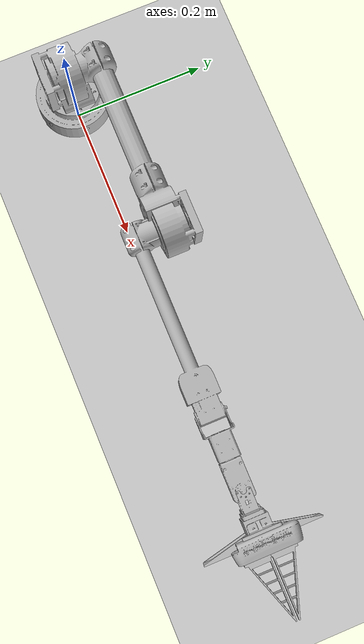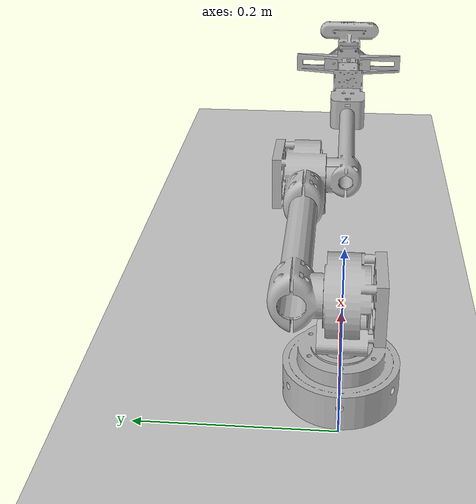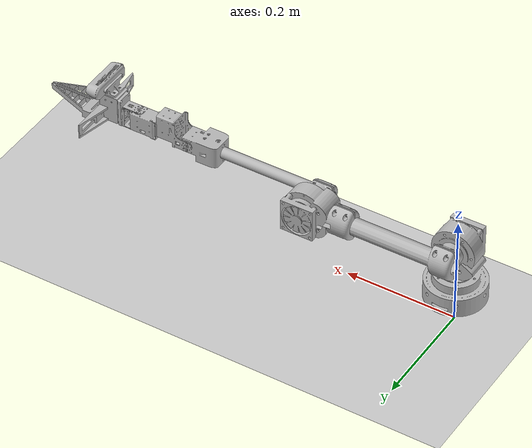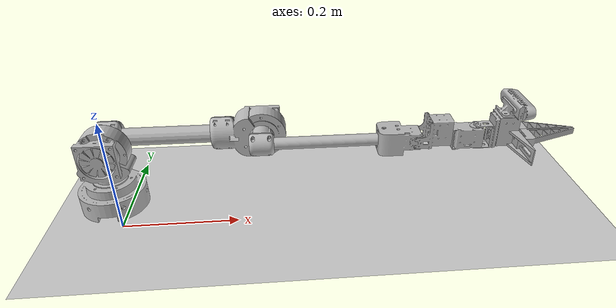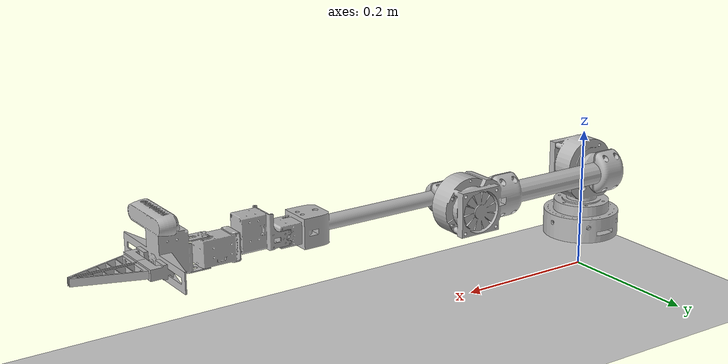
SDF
<?xml version="1.0"?>
<sdf version="1.6">
  <world name="st_arm_gazebo">
    <physics name="default_physics" default="0" type="ode">
      <max_step_size>0.001</max_step_size> <!-- 가지보 주기 -->
      <real_time_factor>1</real_time_factor>
      <real_time_update_rate>1000</real_time_update_rate>
      <ode>
	<solver>
	  <type>quick</type>
	  <iters>100</iters>
	  <sor>1.0</sor>
	  <use_dynamic_moi_rescaling>false</use_dynamic_moi_rescaling>
	</solver>
      </ode>
    </physics>

    <include>
      <uri>model://ground_plane</uri>
    </include>

    <include>
      <uri>model://sun</uri>
    </include>

    <include>
      <uri>model://st_arm_description</uri>
	    <pose frame="">0 0 0.05 0 0 0</pose> <!-- 0.5=공중 -->
      <plugin name="plugin" filename="libst_arm_plugin.so"/>
    </include>
  </world>
</sdf>

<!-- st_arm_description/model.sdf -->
<sdf version='1.7'>
  <model name='st_arm'>

    <joint name='world_joint' type='fixed'>
      <child>base_link</child>
      <parent>world</parent>
      <axis>
        <xyz>0 0 0</xyz>
        <limit>
          <lower>-1e+16</lower>
          <upper>1e+16</upper>
        </limit>
        <dynamics>
          <spring_reference>0</spring_reference>
          <spring_stiffness>0</spring_stiffness>
        </dynamics>
        <use_parent_model_frame>1</use_parent_model_frame>
      </axis>
    </joint>
    <link name='base_link'>
      <visual name='base_link_visual'>
        <pose>0 0 0 0 -0 0</pose>
        <geometry>
          <mesh>
            <scale>1 1 1</scale>
            <uri>model://st_arm_description/meshes/stl/base_link.STL</uri>
          </mesh>
        </geometry>
      </visual>
    </link>
    <joint name='shoulder_yaw_joint' type='revolute'>
      <pose relative_to='base_link'>0 0 0 0 -0 0</pose>
      <parent>base_link</parent>
      <child>shoulder_yaw_link</child>
      <axis>
        <xyz>0 0 1</xyz>
        <limit>
          <lower>-3.14</lower>
          <upper>3.14</upper>
          <effort>1</effort>
          <velocity>1</velocity>
        </limit>
        <dynamics>
          <damping>0.1</damping>
          <friction>0.1</friction>
          <spring_reference>0</spring_reference>
          <spring_stiffness>0</spring_stiffness>
        </dynamics>
      </axis>
    </joint>
    <link name='shoulder_yaw_link'>
      <pose relative_to='shoulder_yaw_joint'>0 0 0 0 -0 0</pose>
      <inertial>
        <pose>-0.000383 -0.007781 0.091573 0 -0 0</pose>
        <mass>0.11951</mass>
        <inertia>
          <ixx>4.8912e-05</ixx>
          <ixy>5.139e-07</ixy>
          <ixz>7.7875e-07</ixz>
          <iyy>8.0458e-05</iyy>
          <iyz>3.5883e-08</iyz>
          <izz>6.5405e-05</izz>
        </inertia>
      </inertial>
      <visual name='shoulder_yaw_link_visual'>
        <pose>0 0 0 0 -0 0</pose>
        <geometry>
          <mesh>
            <scale>1 1 1</scale>
            <uri>model://st_arm_description/meshes/stl/shoulder_yaw_link.STL</uri>
          </mesh>
        </geometry>
      </visual>
    </link>
    <joint name='shoulder_pitch_joint' type='revolute'>
      <pose relative_to='shoulder_yaw_link'>0 0 0.1024 0 -0 0</pose>
      <parent>shoulder_yaw_link</parent>
      <child>shoulder_pitch_link</child>
      <axis>
        <xyz>0 1 0</xyz>
        <limit>
          <lower>-3.14</lower>
          <upper>0.1</upper>
          <effort>1</effort>
          <velocity>1</velocity>
        </limit>
        <dynamics>
          <damping>0.1</damping>
          <friction>0.1</friction>
          <spring_reference>0</spring_reference>
          <spring_stiffness>0</spring_stiffness>
        </dynamics>
      </axis>
    </joint>
    <link name='shoulder_pitch_link'>
      <pose relative_to='shoulder_pitch_joint'>0 0 0 0 -0 0</pose>
      <inertial>
        <pose>0.15644 0.048066 1e-05 0 -0 0</pose>
        <mass>0.24697</mass>
        <inertia>
          <ixx>9.437e-05</ixx>
          <ixy>3.5353e-07</ixy>
          <ixz>-1.4925e-08</ixz>
          <iyy>0.00039967</iyy>
          <iyz>-3.7482e-09</iyz>
          <izz>0.0003625</izz>
        </inertia>
      </inertial>
      <visual name='shoulder_pitch_link_visual'>
        <pose>0 0 0 0 -0 0</pose>
        <geometry>
          <mesh>
            <scale>1 1 1</scale>
            <uri>model://st_arm_description/meshes/stl/shoulder_pitch_link.STL</uri>
          </mesh>
        </geometry>
      </visual>
    </link>
    <joint name='elbow_pitch_joint' type='revolute'>
      <pose relative_to='shoulder_pitch_link'>0.25 0 0 0 -0 0</pose>
      <parent>shoulder_pitch_link</parent>
      <child>elbow_pitch_link</child>
      <axis>
        <xyz>0 1 0</xyz>
        <limit>
          <lower>-0.1</lower>
          <upper>2.8</upper>
          <effort>1</effort>
          <velocity>1</velocity>
        </limit>
        <dynamics>
          <damping>0.1</damping>
          <friction>0.1</friction>
          <spring_reference>0</spring_reference>
          <spring_stiffness>0</spring_stiffness>
        </dynamics>
      </axis>
    </joint>
    <link name='elbow_pitch_link'>
      <pose relative_to='elbow_pitch_joint'>0 0 0 0 -0 0</pose>
      <inertial>
        <pose>0.14489 0.001397 2.9e-05 0 -0 0</pose>
        <mass>0.15458</mass>
        <inertia>
          <ixx>2.7811e-05</ixx>
          <ixy>-7.6006e-08</ixy>
          <ixz>-2.7358e-10</ixz>
          <iyy>0.00024853</iyy>
          <iyz>-1.2741e-10</iyz>
          <izz>0.00024924</izz>
        </inertia>
      </inertial>
      <visual name='elbow_pitch_link_visual'>
        <pose>0 0 0 0 -0 0</pose>
        <geometry>
          <mesh>
            <scale>1 1 1</scale>
            <uri>model://st_arm_description/meshes/stl/elbow_pitch_link.STL</uri>
          </mesh>
        </geometry>
      </visual>
    </link>
    <joint name='wrist_pitch_joint' type='revolute'>
      <pose relative_to='elbow_pitch_link'>0.25 0 0 0 -0 0</pose>
      <parent>elbow_pitch_link</parent>
      <child>wrist_pitch_link</child>
      <axis>
        <xyz>0 1 0</xyz>
        <limit>
          <lower>-2.8</lower>
          <upper>3.5</upper>
          <effort>1</effort>
          <velocity>1</velocity>
        </limit>
        <dynamics>
          <damping>0.1</damping>
          <friction>0.1</friction>
          <spring_reference>0</spring_reference>
          <spring_stiffness>0</spring_stiffness>
        </dynamics>
      </axis>
    </joint>
    <link name='wrist_pitch_link'>
      <pose relative_to='wrist_pitch_joint'>0 0 0 0 -0 0</pose>
      <inertial>
        <pose>0.045384 0 0.011625 0 -0 0</pose>
        <mass>0.04488</mass>
        <inertia>
          <ixx>1.056e-05</ixx>
          <ixy>9.3256e-17</ixy>
          <ixz>-1.6017e-09</ixz>
          <iyy>1.2042e-05</iyy>
          <iyz>5.2438e-15</iyz>
          <izz>7.0619e-06</izz>
        </inertia>
      </inertial>
      <visual name='wrist_pitch_link_visual'>
        <pose>0 0 0 0 -0 0</pose>
        <geometry>
          <mesh>
            <scale>1 1 1</scale>
            <uri>model://st_arm_description/meshes/stl/wrist_pitch_link.STL</uri>
          </mesh>
        </geometry>
      </visual>
    </link>
    <joint name='wrist_roll_joint' type='revolute'>
      <pose relative_to='wrist_pitch_link'>0 0 0 0 -0 0</pose>
      <parent>wrist_pitch_link</parent>
      <child>wrist_roll_link</child>
      <axis>
        <xyz>1 0 0</xyz>
        <limit>
          <lower>-3.14</lower>
          <upper>3.14</upper>
          <effort>1</effort>
          <velocity>1</velocity>
        </limit>
        <dynamics>
          <damping>0.1</damping>
          <friction>0.1</friction>
          <spring_reference>0</spring_reference>
          <spring_stiffness>0</spring_stiffness>
        </dynamics>
      </axis>
    </joint>
    <link name='wrist_roll_link'>
      <pose relative_to='wrist_roll_joint'>0 0 0 0 -0 0</pose>
      <inertial>
        <pose>0.092875 0 0.000384 0 -0 0</pose>
        <mass>0.04488</mass>
        <inertia>
          <ixx>7.0619e-06</ixx>
          <ixy>-5.2437e-15</ixy>
          <ixz>1.6017e-09</ixz>
          <iyy>1.2042e-05</iyy>
          <iyz>9.3284e-17</iyz>
          <izz>1.056e-05</izz>
        </inertia>
      </inertial>
      <visual name='wrist_roll_link_visual'>
        <pose>0 0 0 0 -0 0</pose>
        <geometry>
          <mesh>
            <scale>1 1 1</scale>
            <uri>model://st_arm_description/meshes/stl/wrist_roll_link.STL</uri>
          </mesh>
        </geometry>
      </visual>
    </link>
    <joint name='wrist_yaw_joint' type='revolute'>
      <pose relative_to='wrist_roll_link'>0.1045 0 0 0 -0 0</pose>
      <parent>wrist_roll_link</parent>
      <child>wrist_yaw_link</child>
      <axis>
        <xyz>0 0 1</xyz>
        <limit>
          <lower>-2</lower>
          <upper>2</upper>
          <effort>1</effort>
          <velocity>1</velocity>
        </limit>
        <dynamics>
          <damping>0.1</damping>
          <friction>0.1</friction>
          <spring_reference>0</spring_reference>
          <spring_stiffness>0</spring_stiffness>
        </dynamics>
      </axis>
    </joint>
    <link name='wrist_yaw_link'>
      <pose relative_to='wrist_yaw_joint'>0 0 0 0 -0 0</pose>
      <inertial>
        <pose>0.056543 0.00077 0.031224 0 -0 0</pose>
        <mass>0.0830727</mass>
        <inertia>
          <ixx>3.41437e-05</ixx>
          <ixy>4.57205e-08</ixy>
          <ixz>-1.45879e-08</ixz>
          <iyy>1.41539e-05</iyy>
          <iyz>-7.66183e-09</iyz>
          <izz>2.93287e-05</izz>
        </inertia>
      </inertial>
      <visual name='wrist_yaw_link_visual'>
        <pose>0 0 0 0 -0 0</pose>
        <geometry>
          <mesh>
            <scale>1 1 1</scale>
            <uri>model://st_arm_description/meshes/stl/wrist_yaw_link.STL</uri>
          </mesh>
        </geometry>
      </visual>
    </link>
    <joint name='gripper_left_joint' type='prismatic'>
      <pose relative_to='wrist_yaw_link'>0.083595 0.00168 0 0 -0 0</pose>
      <parent>wrist_yaw_link</parent>
      <child>gripper_left_link</child>
      <axis>
        <xyz>0 -1 0</xyz>
        <limit>
          <lower>-0.05</lower>
          <upper>0</upper>
          <effort>1</effort>
          <velocity>1</velocity>
        </limit>
        <dynamics>
          <damping>0.1</damping>
          <friction>0.1</friction>
          <spring_reference>0</spring_reference>
          <spring_stiffness>0</spring_stiffness>
        </dynamics>
      </axis>
    </joint>
    <link name='gripper_left_link'>
      <pose relative_to='gripper_left_joint'>0 0 0 0 -0 0</pose>
      <inertial>
        <pose>0.011191 0.017208 -0 0 -0 0</pose>
        <mass>0.0151655</mass>
        <inertia>
          <ixx>1.52745e-06</ixx>
          <ixy>1.20106e-06</ixy>
          <ixz>3.87211e-18</ixz>
          <iyy>7.43136e-06</iyy>
          <iyz>-6.58552e-19</iyz>
          <izz>8.50839e-06</izz>
        </inertia>
      </inertial>
      <collision name='gripper_left_link_collision'>
        <pose>0 0 0 0 -0 0</pose>
        <geometry>
          <mesh>
            <scale>1 1 1</scale>
            <uri>model://st_arm_description/meshes/stl/gripper_left_link.STL</uri>
          </mesh>
        </geometry>
      </collision>
      <visual name='gripper_left_link_visual'>
        <pose>0 0 0 0 -0 0</pose>
        <geometry>
          <mesh>
            <scale>1 1 1</scale>
            <uri>model://st_arm_description/meshes/stl/gripper_left_link.STL</uri>
          </mesh>
        </geometry>
      </visual>
    </link>
    <joint name='gripper_right_joint' type='prismatic'>
      <pose relative_to='wrist_yaw_link'>0.083595 0.00168 0 0 -0 0</pose>
      <parent>wrist_yaw_link</parent>
      <child>gripper_right_link</child>
      <axis>
        <xyz>0 1 0</xyz>
        <limit>
          <lower>-0.05</lower>
          <upper>0</upper>
          <effort>1</effort>
          <velocity>1</velocity>
        </limit>
        <dynamics>
          <damping>0.1</damping>
          <friction>0.1</friction>
          <spring_reference>0</spring_reference>
          <spring_stiffness>0</spring_stiffness>
        </dynamics>
      </axis>
    </joint>
    <link name='gripper_right_link'>
      <pose relative_to='gripper_right_joint'>0 0 0 0 -0 0</pose>
      <inertial>
        <pose>0.011191 -0.017208 0 0 -0 0</pose>
        <mass>0.0151655</mass>
        <inertia>
          <ixx>1.52745e-06</ixx>
          <ixy>-1.20106e-06</ixy>
          <ixz>1.01095e-20</ixz>
          <iyy>7.43136e-06</iyy>
          <iyz>9.01849e-21</iyz>
          <izz>8.50839e-06</izz>
        </inertia>
      </inertial>
      <collision name='gripper_right_link_collision'>
        <pose>0 0 0 0 -0 0</pose>
        <geometry>
          <mesh>
            <scale>1 1 1</scale>
            <uri>model://st_arm_description/meshes/stl/gripper_right_link.STL</uri>
          </mesh>
        </geometry>
      </collision>
      <visual name='gripper_right_link_visual'>
        <pose>0 0 0 0 -0 0</pose>
        <geometry>
          <mesh>
            <scale>1 1 1</scale>
            <uri>model://st_arm_description/meshes/stl/gripper_right_link.STL</uri>
          </mesh>
        </geometry>
      </visual>
    </link>
  </model>
</sdf>
